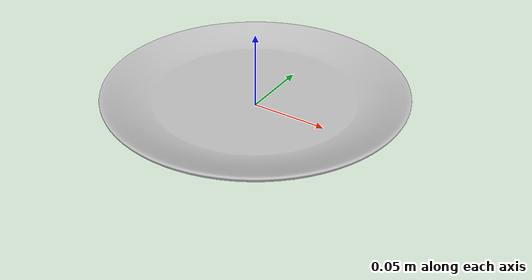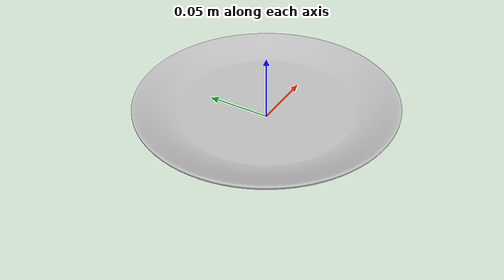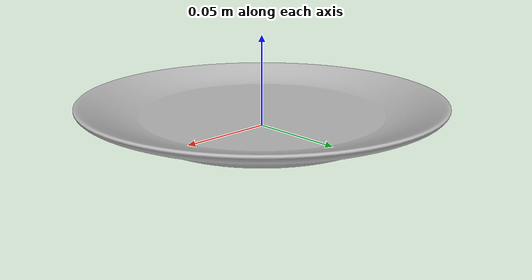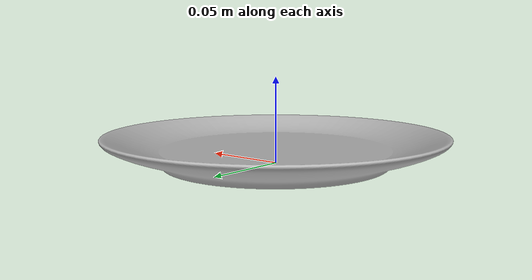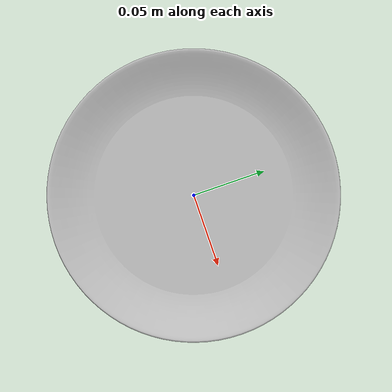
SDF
<?xml version="1.0"?>
<sdf version="1.7">
  <model name="ikea_dinera_plate_8in">
    <link name="ikea_dinera_plate_8in">
      <pose>0 0 0 0 0 0</pose>
      <inertial>
        <pose>0 0 0.00915 0 0 0</pose>
        <mass>0.375</mass>
        <inertia>
          <ixx>0.000860</ixx>
          <ixy>0</ixy>
          <ixz>0</ixz>
          <iyy>0.000860</iyy>
          <iyz>0</iyz>
          <izz>0.00171</izz>
        </inertia>
      </inertial>
      <visual name="visual">
        <pose>0 0 0 0 0 0</pose>
        <geometry>
          <mesh>
            <uri>ikea_dinera_plate_8in.obj</uri>
            <scale>1.0 1.0 1.0</scale>
          </mesh>
        </geometry>
      </visual>
      <collision name="collision">
        <pose>0 0 0 0 0 0</pose>
        <geometry>
          <mesh>
            <uri>ikea_dinera_plate_8in_col.obj</uri>
            <scale>1.0 1.0 1.0</scale>
          </mesh>
        </geometry>
        <drake:proximity_properties>
          <drake:rigid_hydroelastic/>
          <drake:mesh_resolution_hint>0.1</drake:mesh_resolution_hint>
        </drake:proximity_properties>
        <material>
          <drake:diffuse_map>ikea_dinera_plate_8in_color.png</drake:diffuse_map>
        </material>
      </collision>
    </link>
    <frame name="flush_bottom_center__z_up">
      <pose relative_to="ikea_dinera_plate_8in">0 0 0 0 0 0</pose>
    </frame>
    <frame name="origin">
      <pose relative_to="ikea_dinera_plate_8in">0 0 0 0 0 0</pose>
    </frame>
  </model>
</sdf>
